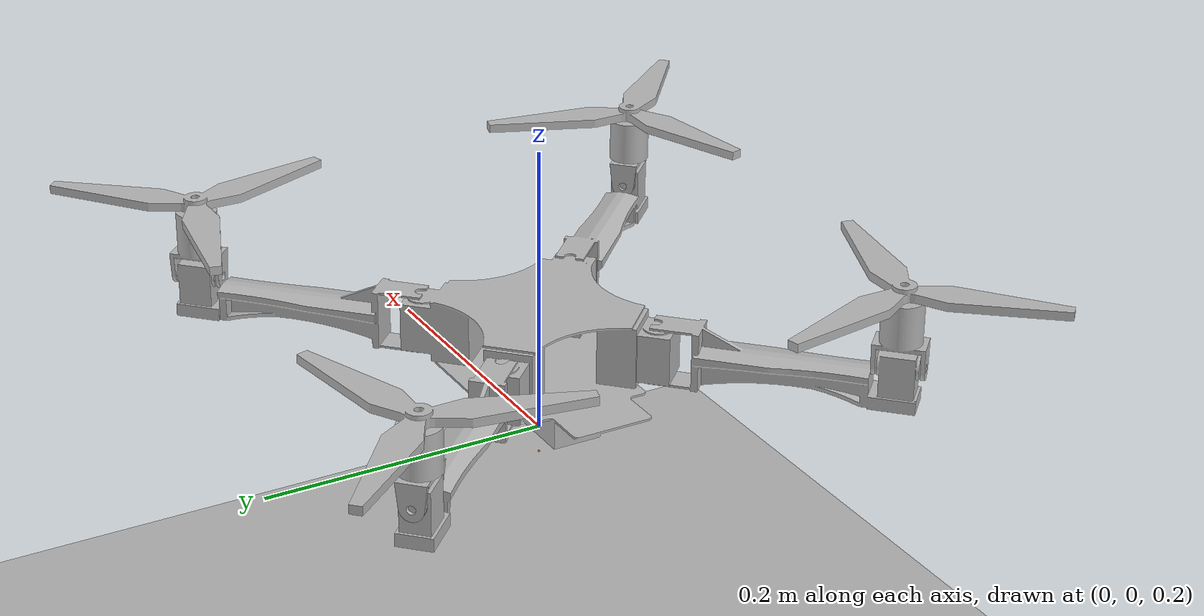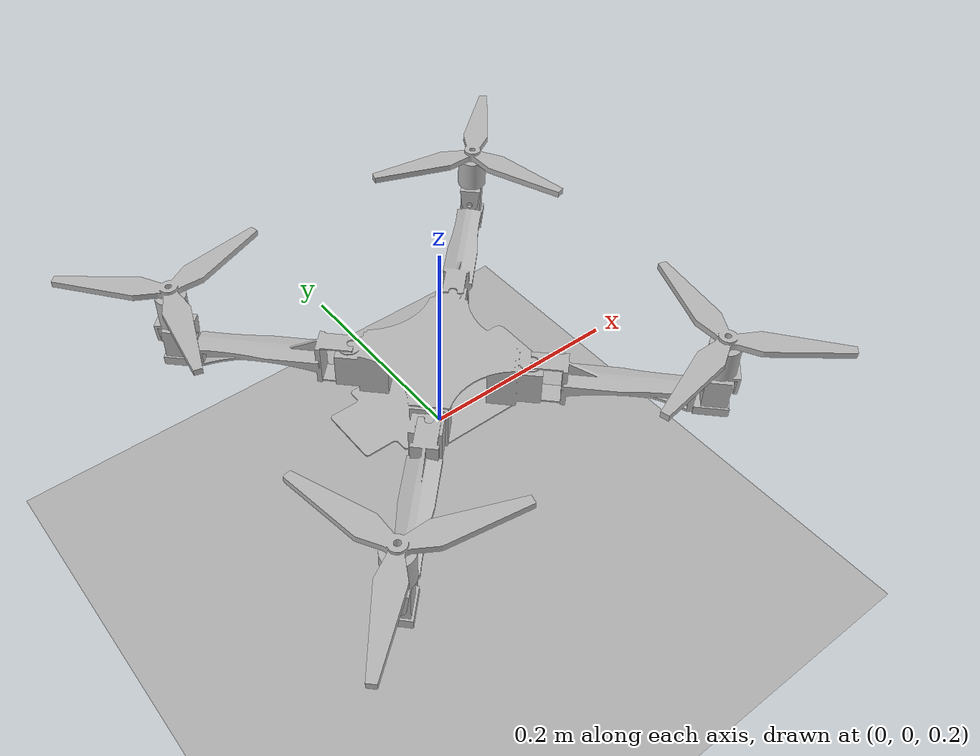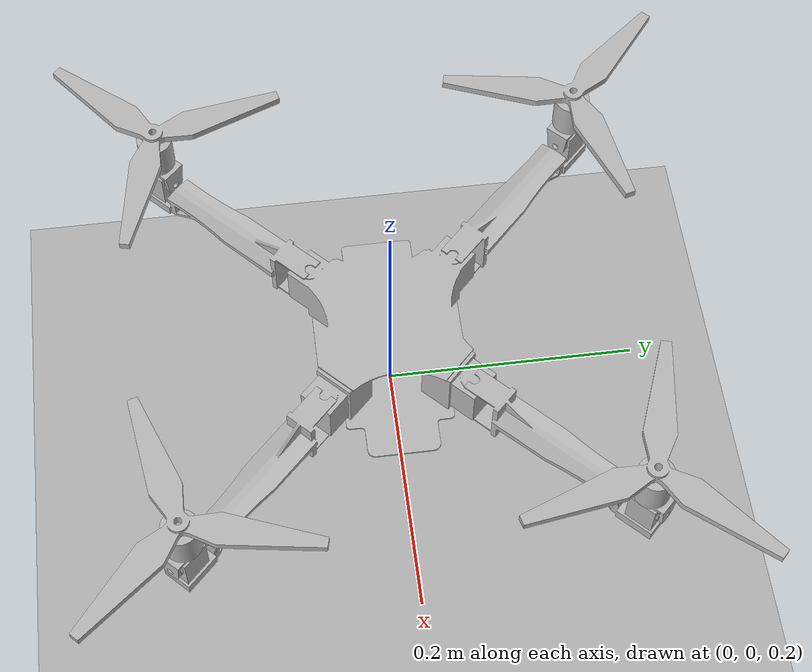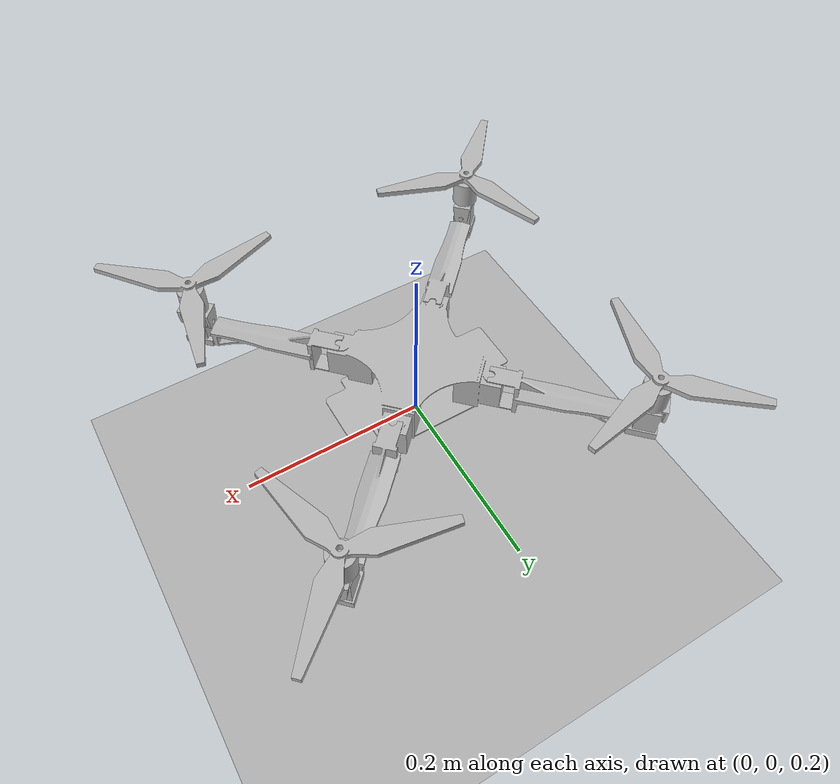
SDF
<?xml version='1.0' encoding='UTF-8'?>
<sdf version="1.7">
  <world name="Morphing_world">
      <physics type="ode">
      <max_step_size>0.001</max_step_size>
      <real_time_factor>1</real_time_factor>
      <real_time_update_rate>1000</real_time_update_rate>
      <ode>
        <solver>
          <type>quick</type>
          <iters>1500</iters>
          <sor>1.4</sor>
        </solver>
        <constraints>
          <cfm>0</cfm>
          <erp>1</erp>
          <contact_max_correcting_vel>0</contact_max_correcting_vel>
          <contact_surface_layer>0</contact_surface_layer>
        </constraints>
      </ode>
    </physics>

    <light type="directional" name="sun">
      <cast_shadows>true</cast_shadows>
      <pose>0 0 10 0 0 0</pose>
      <diffuse>0.8 0.8 0.8 1</diffuse>
      <specular>0.2 0.2 0.2 1</specular>
      <attenuation>
        <range>1000</range>
        <constant>0.9</constant>
        <linear>0.01</linear>
        <quadratic>0.001</quadratic>
      </attenuation>
      <direction>-0.5 0.1 -0.9</direction>
    </light>

    <model name="ground_plane">
      <static>true</static>
      <link name="link">
        <collision name="collision">
          <geometry>
            <plane>
              <normal>0 0 1</normal>
            </plane>
          </geometry>
          <surface>
            <friction>
              <ode>
                <mu>0.8</mu>
                <mu2>0.8</mu2>
              </ode>
            </friction>
          </surface>
        </collision>
        <visual name="visual">
          <geometry>
            <plane>
              <normal>0 0 1</normal>
              <size>100 100</size>
            </plane>
          </geometry>
          <material>
            <ambient>0.7 0.7 0.7 1</ambient>
            <diffuse>0.7 0.7 0.7 1</diffuse>
            <specular>0.7 0.7 0.7 1</specular>
          </material>
        </visual>
      </link>
    </model>

    <model name="Morphing_drone" canonical_link="body_link">
      <self_collide>true</self_collide>
      <pose>0 0 0.18 0 0 0</pose>
      <link name="body_link">
        <pose>0 0 0.033 0 0 0</pose>
        <collision name="body_collision">
          <pose>0 0 0.033 1.570796327 0 3.1415926535</pose>
          <geometry>
            <mesh>
              <uri>stl/body_link.stl</uri>
              <scale>0.001 0.001 0.001</scale>
            </mesh>
          </geometry>
          <surface>
            <contact/>
          </surface>
        </collision>
        <inertial>
          <pose>0.001705 0.000036 0.042196 0 0 0</pose>
          <mass>0.733</mass>
          <inertia>
            <ixx>0.001313892</ixx>
            <ixy>0</ixy>
            <ixz>-0.000018352 </ixz>
            <iyy>0.001655877</iyy>
            <iyz>0</iyz>
            <izz>0.002162122</izz>
          </inertia>
        </inertial>
        <visual name="body_visual">
          <pose>0 0 0.033 1.570796327 0 3.1415926535</pose>
          <geometry>
            <mesh>
              <uri>stl/body_link.stl</uri>
              <scale>0.001 0.001 0.001</scale>
            </mesh>
          </geometry>
        </visual>
      </link>
        <!-- COM에 추가할 가벼운 링크 -->
      <link name="com_force_link">
        <!-- 모델 전체 COM 위치 (body_link 기준 좌표계) -->
        <pose>0.002048 0.0000205 0.09248 0 0 0</pose>
        <inertial>
          <!-- 매우 작은 질량 -->
          <mass>1e-6</mass>
          <!-- 링크 고유 CoM은 링크 원점에 -->
          <pose>0 0 0 0 0 0</pose>
          <!-- 관성 모멘트도 작게 -->
          <inertia>
            <ixx>1e-9</ixx>
            <iyy>1e-9</iyy>
            <izz>1e-9</izz>
            <ixy>0</ixy>
            <ixz>0</ixz>
            <iyz>0</iyz>
          </inertia>
        </inertial>
      </link>
      <link name="Ycom_force_link">
        <!-- 모델 전체 COM 위치 (body_link 기준 좌표계) -->
        <pose>0.012548 0.0105205 0.09248 0 0 0</pose>
        <inertial>
          <!-- 매우 작은 질량 -->
          <mass>1e-6</mass>
          <!-- 링크 고유 CoM은 링크 원점에 -->
          <pose>0 0 0 0 0 0</pose>
          <!-- 관성 모멘트도 작게 -->
          <inertia>
            <ixx>1e-9</ixx>
            <iyy>1e-9</iyy>
            <izz>1e-9</izz>
            <ixy>0</ixy>
            <ixz>0</ixz>
            <iyz>0</iyz>
          </inertia>
        </inertial>
      </link>
      <link name="flare1_link">
        <pose relative_to="flare1_link_joint">0 0 0 0 0 0</pose>
        <collision name="flare1_collision">
          <pose relative_to="flare1_link_joint">0 0 0 1.570796327 0 1.570796327</pose>
          <geometry>
            <mesh>
              <uri>stl/flare_link.stl</uri>
              <scale>0.001 0.001 0.001</scale>
            </mesh>
          </geometry>
          <surface>
            <contact/>
          </surface>
        </collision>
        <inertial>
          <pose>0.106 0 0 0 0 0</pose>
          <mass>0.056</mass>
          <inertia>
            <ixx>0.000008703</ixx>
            <ixy>-0.000000006</ixy>
            <ixz>-0.000003319</ixz>
            <iyy>0.000187916</iyy>
            <iyz>0</iyz>
            <izz>0.000183866</izz>
          </inertia>
        </inertial>
        <visual name="flare1_visual">
          <pose relative_to="flare1_link_joint">0 0 0 1.570796327 0 1.570796327</pose>
          <geometry>
            <mesh>
              <uri>stl/flare_link.stl</uri>
              <scale>0.001 0.001 0.001</scale>
            </mesh>
          </geometry>
        </visual>
      </link>
      <link name="flare2_link">
        <pose relative_to="flare2_link_joint">0 0 0 0 0 0</pose>
        <collision name="flare2_collision">
          <pose relative_to="flare2_link_joint">0 0 0 1.570796327 0 1.570796327</pose>
          <geometry>
            <mesh>
              <uri>stl/flare_link.stl</uri>
              <scale>0.001 0.001 0.001</scale>
            </mesh>
          </geometry>
          <surface>
            <contact/>
          </surface>
        </collision>
        <inertial>
          <pose>0.106 0 0 0 0 0</pose>
          <mass>0.056</mass>
          <inertia>
            <ixx>0.000008703</ixx>
            <ixy>-0.000000006</ixy>
            <ixz>-0.000003319</ixz>
            <iyy>0.000187916</iyy>
            <iyz>0</iyz>
            <izz>0.000183866</izz>
          </inertia>
        </inertial>
        <visual name="flare2_visual">
          <pose relative_to="flare2_link_joint">0 0 0 1.570796327 0 1.570796327</pose>
          <geometry>
            <mesh>
              <uri>stl/flare_link.stl</uri>
              <scale>0.001 0.001 0.001</scale>
            </mesh>
          </geometry>
        </visual>
      </link>
      <link name="flare3_link">
        <pose relative_to="flare3_link_joint">0 0 0 0 0 0</pose>
        <collision name="flare3_collision">
          <pose relative_to="flare3_link_joint">0 0 0 1.570796327 0 1.570796327</pose>
          <geometry>
            <mesh>
              <uri>stl/flare_link.stl</uri>
              <scale>0.001 0.001 0.001</scale>
            </mesh>
          </geometry>
          <surface>
            <contact/>
          </surface>
        </collision>
        <inertial>
          <pose>0.106 0 0 0 0 0</pose>
          <mass>0.056</mass>
          <inertia>
            <ixx>0.000008703</ixx>
            <ixy>-0.000000006</ixy>
            <ixz>-0.000003319</ixz>
            <iyy>0.000187916</iyy>
            <iyz>0</iyz>
            <izz>0.000183866</izz>
          </inertia>
        </inertial>
        <visual name="flare3_visual">
          <pose relative_to="flare3_link_joint">0 0 0 1.570796327 0 1.570796327</pose>
          <geometry>
            <mesh>
              <uri>stl/flare_link.stl</uri>
              <scale>0.001 0.001 0.001</scale>
            </mesh>
          </geometry>
        </visual>
      </link>
      <link name="flare4_link">
        <pose relative_to="flare4_link_joint">0 0 0 0 0 0</pose>
        <collision name="flare4_collision">
          <pose relative_to="flare4_link_joint">0 0 0 1.570796327 0 1.570796327</pose>
          <geometry>
            <mesh>
              <uri>stl/flare_link.stl</uri>
              <scale>0.001 0.001 0.001</scale>
            </mesh>
          </geometry>
          <surface>
            <contact/>
          </surface>
        </collision>
        <inertial>
          <pose>0.106 0 0 0 0 0</pose>
          <mass>0.056</mass>
          <inertia>
            <ixx>0.000008703</ixx>
            <ixy>-0.000000006</ixy>
            <ixz>-0.000003319</ixz>
            <iyy>0.000187916</iyy>
            <iyz>0</iyz>
            <izz>0.000183866</izz>
          </inertia>
        </inertial>
        <visual name="flare4_visual">
          <pose relative_to="flare4_link_joint">0 0 0 1.570796327 0 1.570796327</pose>
          <geometry>
            <mesh>
              <uri>stl/flare_link.stl</uri>
              <scale>0.001 0.001 0.001</scale>
            </mesh>
          </geometry>
        </visual>
      </link>
      <link name="tilt1_link">
        <pose relative_to="tilt1_joint">0 0 0 0 0 0</pose>
        <collision name="tilt_1_collision">
          <pose relative_to="tilt1_joint">0 0 0 -1.570796327 0 0</pose>
          <geometry>
            <mesh>
              <uri> stl/tilt_link.stl</uri>
              <scale>0.001 0.001 0.001</scale>
            </mesh>
          </geometry>
          <surface>
            <contact/>
          </surface>
        </collision>
        <inertial>
          <pose>0 0 0.028 0 0 0 0</pose>
          <mass>0.065</mass>
          <inertia>
            <ixx>0.000009324</ixx>
            <ixy>0</ixy>
            <ixz>0</ixz>
            <iyy>0.000009685</iyy>
            <iyz>0</iyz>
            <izz>0.000007036</izz>
          </inertia>
        </inertial>
        <visual name="tilt_1">
          <pose relative_to="tilt1_joint">0 0 0 -1.570796327 0 0</pose>
          <geometry>
            <mesh>
              <uri> stl/tilt_link.stl</uri>
              <scale>0.001 0.001 0.001</scale>
            </mesh>
          </geometry>
        </visual>
      </link>
      <link name="tilt2_link">
        <pose relative_to="tilt2_joint">0 0 0 0 0 0</pose>
        <collision name="tilt_2_collision">
          <pose relative_to="tilt2_joint">0 0 0 -1.570796327 0 0</pose>
          <geometry>
            <mesh>
              <uri> stl/tilt_link.stl</uri>
              <scale>0.001 0.001 0.001</scale>
            </mesh>
          </geometry>
          <surface>
            <contact/>
          </surface>
        </collision>
        <inertial>
          <pose>0 0 0.028 0 0 0 0</pose>
          <mass>0.065</mass>
          <inertia>
            <ixx>0.000009324</ixx>
            <ixy>0</ixy>
            <ixz>0</ixz>
            <iyy>0.000009685</iyy>
            <iyz>0</iyz>
            <izz>0.000007036</izz>
          </inertia>
        </inertial>
        <visual name="tilt_2">
          <pose relative_to="tilt2_joint">0 0 0 -1.570796327 0 0</pose>
          <geometry>
            <mesh>
              <uri> stl/tilt_link.stl</uri>
              <scale>0.001 0.001 0.001</scale>
            </mesh>
          </geometry>
        </visual>
      </link>
      <link name="tilt3_link">
        <pose relative_to="tilt3_joint">0 0 0 0 0 0</pose>
        <collision name="tilt_3_collision">
          <pose relative_to="tilt3_joint">0 0 0 -1.570796327 0 0</pose>
          <geometry>
            <mesh>
              <uri> stl/tilt_link.stl</uri>
              <scale>0.001 0.001 0.001</scale>
            </mesh>
          </geometry>
          <surface>
            <contact/>
          </surface>
        </collision>
        <inertial>
          <pose>0 0 0.028 0 0 0 0</pose>
          <mass>0.065</mass>
          <inertia>
            <ixx>0.000009324</ixx>
            <ixy>0</ixy>
            <ixz>0</ixz>
            <iyy>0.000009685</iyy>
            <iyz>0</iyz>
            <izz>0.000007036</izz>
          </inertia>
        </inertial>
        <visual name="tilt_3">
          <pose relative_to="tilt3_joint">0 0 0 -1.570796327 0 0</pose>
          <geometry>
            <mesh>
              <uri> stl/tilt_link.stl</uri>
              <scale>0.001 0.001 0.001</scale>
            </mesh>
          </geometry>
        </visual>
      </link>
      <link name="tilt4_link">
        <pose relative_to="tilt4_joint">0 0 0 0 0 0</pose>
        <collision name="tilt_4_collision">
          <pose relative_to="tilt4_joint">0 0 0 -1.570796327 0 0</pose>
          <geometry>
            <mesh>
              <uri> stl/tilt_link.stl</uri>
              <scale>0.001 0.001 0.001</scale>
            </mesh>
          </geometry>
          <surface>
            <contact/>
          </surface>
        </collision>
        <inertial>
          <pose>0 0 0.028 0 0 0 0</pose>
          <mass>0.065</mass>
          <inertia>
            <ixx>0.000009324</ixx>
            <ixy>0</ixy>
            <ixz>0</ixz>
            <iyy>0.000009685</iyy>
            <iyz>0</iyz>
            <izz>0.000007036</izz>
          </inertia>
        </inertial>
        <visual name="tilt_4">
          <pose relative_to="tilt4_joint">0 0 0 -1.570796327 0 0</pose>
          <geometry>
            <mesh>
              <uri> stl/tilt_link.stl</uri>
              <scale>0.001 0.001 0.001</scale>
            </mesh>
          </geometry>
        </visual>
      </link>
      <link name="prop1_link">
        <pose relative_to="tilt1_joint">0 0 0.048 0 0 0</pose>
        <collision name="prop1_collision">
          <geometry>
            <mesh>
              <uri> stl/prop_link.stl</uri>
              <scale>0.001 0.001 0.001</scale>
            </mesh>
          </geometry>
          <surface>
            <contact/>
          </surface>
        </collision>
        <inertial>
          <pose>0 0 0 0 0 0</pose>
          <mass>0.018</mass>
          <inertia>
            <ixx>0.0000282327</ixx>
            <ixy>0</ixy>
            <ixz>0</ixz>
            <iyy>0.0000282327</iyy>
            <iyz>0</iyz>
            <izz>0.0000560071</izz>
          </inertia>
        </inertial>
        <visual name="prop1_visual">
          <geometry>
            <mesh>
              <uri> stl/prop_link.stl</uri>
              <scale>0.001 0.001 0.001</scale>
            </mesh>
          </geometry>
        </visual>
      </link>
      <link name="prop2_link">
        <pose relative_to="tilt2_joint">0 0 0.048 0 0 0</pose>
        <collision name="prop2_collision">
          <geometry>
            <mesh>
              <uri> stl/prop_link.stl</uri>
              <scale>0.001 0.001 0.001</scale>
            </mesh>
          </geometry>
          <surface>
            <contact/>
          </surface>
        </collision>
        <inertial>
          <pose>0 0 0 0 0 0</pose>
          <mass>0.018</mass>
          <inertia>
            <ixx>0.0000282327</ixx>
            <ixy>0</ixy>
            <ixz>0</ixz>
            <iyy>0.0000282327</iyy>
            <iyz>0</iyz>
            <izz>0.0000560071</izz>
          </inertia>
        </inertial>
        <visual name="prop2_visual">
          <geometry>
            <mesh>
              <uri> stl/prop_link.stl</uri>
              <scale>0.001 0.001 0.001</scale>
            </mesh>
          </geometry>
        </visual>
      </link>
      <link name="prop3_link">
        <pose relative_to="tilt3_joint">0 0 0.048 0 0 0</pose>
        <collision name="prop3_collision">
          <geometry>
            <mesh>
              <uri> stl/prop_link.stl</uri>
              <scale>0.001 0.001 0.001</scale>
            </mesh>
          </geometry>
          <surface>
            <contact/>
          </surface>
        </collision>
        <inertial>
          <pose>0 0 0 0 0 0</pose>
          <mass>0.018</mass>
          <inertia>
            <ixx>0.0000282327</ixx>
            <ixy>0</ixy>
            <ixz>0</ixz>
            <iyy>0.0000282327</iyy>
            <iyz>0</iyz>
            <izz>0.0000560071</izz>
          </inertia>
        </inertial>
        <visual name="prop3_visual">
          <geometry>
            <mesh>
              <uri> stl/prop_link.stl</uri>
              <scale>0.001 0.001 0.001</scale>
            </mesh>
          </geometry>
        </visual>
      </link>
      <link name="prop4_link">
        <pose relative_to="tilt4_joint">0 0 0.048 0 0 0</pose>
        <collision name="prop4_collision">
          <geometry>
            <mesh>
              <uri> stl/prop_link.stl</uri>
              <scale>0.001 0.001 0.001</scale>
            </mesh>
          </geometry>
          <surface>
            <contact/>
          </surface>
        </collision>
        <inertial>
          <pose>0 0 0 0 0 0</pose>
          <mass>0.018</mass>
          <inertia>
            <ixx>0.0000282327</ixx>
            <ixy>0</ixy>
            <ixz>0</ixz>
            <iyy>0.0000282327</iyy>
            <iyz>0</iyz>
            <izz>0.0000560071</izz>
          </inertia>
        </inertial>
        <visual name="prop4_visual">
          <geometry>
            <mesh>
              <uri> stl/prop_link.stl</uri>
              <scale>0.001 0.001 0.001</scale>
            </mesh>
          </geometry>
        </visual>
      </link>

      <link name="imu_link">
        <pose>0 0 0.001 0 0 0</pose>
        <visual name="visual">
          <geometry>
            <box>
              <size>0.001 0.001 0.001</size>
            </box>
          </geometry>
          <material>
            <ambient>1 0.5 0 1</ambient>
            <diffuse>1 0.5 0 1</diffuse>
            <specular>0.5 0.5 0.5 1</specular>
            <emissive>0 0 0 0</emissive>
          </material>
        </visual>
        <inertial>
          <mass>0.00001</mass>
          <pose>0 0 0 0 0 0</pose>
          <inertia>
            <ixx>0.00000001</ixx>
            <ixy>0.0</ixy>
            <ixz>0.0</ixz>
            <iyy>0.00000001</iyy>
            <iyz>0.0</iyz>
            <izz>0.00000001</izz>
          </inertia>
        </inertial>
        <sensor name="imu_sensor" type="imu">
          <pose>0 0 0 0 0 0</pose>
          <always_on>true</always_on>
          <update_rate>100</update_rate>
          <imu>
            <topic>imu</topic>
            <update_rate>100</update_rate>
            <orientation>
              <noise>
                <type>gaussian</type>
                <mean>0.0</mean>
                <stddev>0.01</stddev>
              </noise>
            </orientation>
            <angular_velocity>
              <noise>
                <type>gaussian</type>
                <mean>0.0</mean>
                <stddev>0.1</stddev>
              </noise>
            </angular_velocity>
            <linear_acceleration>
              <noise>
                <type>gaussian</type>
                <mean>0.0</mean>
                <stddev>0.1</stddev>
              </noise>
            </linear_acceleration>
          </imu>
          <plugin name="imu_plugin" filename="libgazebo_ros_imu_sensor.so">
            <ros>
              <namespace>/</namespace>
              <argument>~</argument>
            </ros>
            <bodyName>imu_link</bodyName>
            <topicName>imu</topicName>
            <updateRate>100.0</updateRate>
            <gaussianNoise>0.0</gaussianNoise>
            <xyzOffset>0 0 0</xyzOffset>
            <rpyOffset>0 0 0</rpyOffset>
            <frameName>imu_link</frameName>
            <initial_orientation_as_reference>true</initial_orientation_as_reference>
          </plugin>
        </sensor>
      </link>
      <joint name="B2GPS" type="fixed">
        <parent>body_link</parent>
        <child>gps_link</child>
        <pose>0 0 0 0 0 0</pose>
      </joint>
      <joint name="B2IMU" type="fixed">
        <parent>body_link</parent>
        <child>imu_link</child>
        <pose>0 0 0 0 0 0</pose>
      </joint>
      <!--힘, 토크 작용점-->
      <joint name="com_force_joint" type="fixed">
        <parent>body_link</parent>
        <child>com_force_link</child>
        <!-- 이 조인트는 body_link 원점에 고정 -->
        <pose>0 0 0 0 0 0</pose>
      </joint>
      <joint name="Ycom_force_joint" type="fixed">
        <parent>body_link</parent>
        <child>Ycom_force_link</child>
        <!-- 이 조인트는 body_link 원점에 고정 -->
        <pose>0 0 0 0 0 0</pose>
      </joint>

      <joint name="flare1_link_joint" type="revolute">
        <parent>body_link</parent>
        <child>flare1_link</child>
        <pose relative_to="body_link">0.059776 0.057276 0.0555 0 0 0.7853981634</pose>
        <axis>
          <limit>
            <lower>-0.7853981634</lower>
            <upper>0.7853981634</upper>
            <effort>4.9</effort>
            <velocity>0.00000</velocity>
          </limit>
          <xyz>0.00000 0.00000 1.00000</xyz>
        </axis>
      </joint>
      <joint name="flare2_link_joint" type="revolute">
        <parent>body_link</parent>
        <child>flare2_link</child>
        <pose relative_to="body_link">0.059776 -0.057276 0.0555 0 0 -0.7853981634</pose>
        <axis>
          <limit>
            <lower>-0.7853981634</lower>
            <upper>0.7853981634</upper>
            <effort>4.9</effort>
            <velocity>0.00000</velocity>
          </limit>
          <xyz>0.00000 0.00000 1.00000</xyz>
        </axis>
      </joint>
      <joint name="flare3_link_joint" type="revolute">
        <parent>body_link</parent>
        <child>flare3_link</child>
        <pose relative_to="body_link">-0.054776 -0.057276 0.0555 0 0 -2.35619449</pose>
        <axis>
          <limit>
            <lower>-0.7853981634</lower>
            <upper>0.7853981634</upper>
            <effort>4.9</effort>
            <velocity>0.00000</velocity>
          </limit>
          <xyz>0.00000 0.00000 1.00000</xyz>
        </axis>
      </joint>
      <joint name="flare4_link_joint" type="revolute">
        <parent>body_link</parent>
        <child>flare4_link</child>
        <pose relative_to="body_link">-0.054776 0.057276 0.0555 0 0 2.35619449</pose>
        <axis>
          <limit>
            <lower>-0.7853981634</lower>
            <upper>0.7853981634</upper>
            <effort>4.9</effort>
            <velocity>0.00000</velocity>
          </limit>
          <xyz>0.00000 0.00000 1.00000</xyz>
        </axis>
      </joint>
      <joint name="tilt1_joint" type="revolute">
        <pose relative_to="flare1_link_joint">0.1595 0 0.0125 0 0 0</pose>
        <parent>flare1_link</parent>
        <child>tilt1_link</child>
        <axis>
          <limit>
            <lower>-1.570796327</lower>
            <upper>1.570796327</upper>
            <effort>0.98</effort>
            <velocity>0.00000</velocity>

          </limit>
          <xyz>1 0 0</xyz>
        </axis>
      </joint>
      <joint name="tilt2_joint" type="revolute">
        <pose relative_to="flare2_link_joint">0.1595 0 0.0125 0 0 0</pose>
        <parent>flare2_link</parent>
        <child>tilt2_link</child>
        <axis>
          <limit>
            <lower>-1.570796327</lower>
            <upper>1.570796327</upper>
            <effort>0.98</effort>
            <velocity>0.00000</velocity>
          </limit>
          <xyz>1 0 0</xyz>
        </axis>
      </joint>
      <joint name="tilt3_joint" type="revolute">
        <pose relative_to="flare3_link_joint">0.1595 0 0.0125 0 0 0</pose>
        <parent>flare3_link</parent>
        <child>tilt3_link</child>
        <axis>
          <limit>
            <lower>-1.570796327</lower>
            <upper>1.570796327</upper>
            <effort>0.98</effort>
            <velocity>0.00000</velocity>
          </limit>
          <xyz>1 0 0</xyz>
        </axis>
      </joint>
      <joint name="tilt4_joint" type="revolute">
        <pose relative_to="flare4_link_joint">0.1595 0 0.0125 0 0 0</pose>
        <parent>flare4_link</parent>
        <child>tilt4_link</child>
        <axis>
          <limit>
            <lower>-1.570796327</lower>
            <upper>1.570796327</upper>
            <effort>0.98</effort>
            <velocity>0.00000</velocity>
          </limit>
          <xyz>1 0 0</xyz>
        </axis>
      </joint>
      <joint name="prop1_joint" type="revolute">
        <pose relative_to="tilt1_joint">0 0 0.048 0 0 0</pose>
        <parent>tilt1_link</parent>
        <child>prop1_link</child>
        <axis>
          <xyz>0 0 1</xyz>
        </axis>
      </joint>
      <joint name="prop2_joint" type="revolute">
        <pose relative_to="tilt2_joint">0 0 0.048 0 0 0</pose>
        <parent>tilt2_link</parent>
        <child>prop2_link</child>
        <axis>
          <xyz>0 0 1</xyz>
        </axis>
      </joint>
      <joint name="prop3_joint" type="revolute">
        <pose relative_to="tilt3_joint">0 0 0.048 0 0 0</pose>
        <parent>tilt3_link</parent>
        <child>prop3_link</child>
        <axis>
          <xyz>0 0 1</xyz>
        </axis>
      </joint>
      <joint name="prop4_joint" type="revolute">
        <pose relative_to="tilt4_joint">0 0 0.048 0 0 0</pose>
        <parent>tilt4_link</parent>
        <child>prop4_link</child>
        <axis>
          <xyz>0 0 1</xyz>
        </axis>
      </joint>

      <!-- main 모터 -->
      <plugin name="motor1" filename="libgazebo_motor_model_ros.so">
        <robotNamespace>my_drone</robotNamespace>
        <jointName>prop1_joint</jointName>
      </plugin>
      <plugin name="motor2" filename="libgazebo_motor_model_ros.so">
        <robotNamespace>my_drone</robotNamespace>
        <jointName>prop2_joint</jointName>
      </plugin>
      <plugin name="motor3" filename="libgazebo_motor_model_ros.so">
        <robotNamespace>my_drone</robotNamespace>
        <jointName>prop3_joint</jointName>
      </plugin>
      <plugin name="motor4" filename="libgazebo_motor_model_ros.so">
        <robotNamespace>my_drone</robotNamespace>
        <jointName>prop4_joint</jointName>
      </plugin>

      <!-- flare 모터 -->
      <plugin name="motor_flare1" filename="libgazebo_motor_model_ros.so">
        <robotNamespace>my_drone</robotNamespace>
        <jointName>flare1_link_joint</jointName>
      </plugin>
      <plugin name="motor_flare2" filename="libgazebo_motor_model_ros.so">
        <robotNamespace>my_drone</robotNamespace>
        <jointName>flare2_link_joint</jointName>
      </plugin>
      <plugin name="motor_flare3" filename="libgazebo_motor_model_ros.so">
        <robotNamespace>my_drone</robotNamespace>
        <jointName>flare3_link_joint</jointName>
      </plugin>
      <plugin name="motor_flare4" filename="libgazebo_motor_model_ros.so">
        <robotNamespace>my_drone</robotNamespace>
        <jointName>flare4_link_joint</jointName>
      </plugin>

      <!-- tilt 모터 -->
      <plugin name="motor_tilt1" filename="libgazebo_motor_model_ros.so">
        <robotNamespace>my_drone</robotNamespace>
        <jointName>tilt1_joint</jointName>
      </plugin>
      <plugin name="motor_tilt2" filename="libgazebo_motor_model_ros.so">
        <robotNamespace>my_drone</robotNamespace>
        <jointName>tilt2_joint</jointName>
      </plugin>
      <plugin name="motor_tilt3" filename="libgazebo_motor_model_ros.so">
        <robotNamespace>my_drone</robotNamespace>
        <jointName>tilt3_joint</jointName>
      </plugin>
      <plugin name="motor_tilt4" filename="libgazebo_motor_model_ros.so">
        <robotNamespace>my_drone</robotNamespace>
        <jointName>tilt4_joint</jointName>
      </plugin>

      <plugin name="joint_state_publisher"
              filename="libgazebo_ros_joint_state_publisher.so">
        <robotNamespace>my_drone</robotNamespace>
        <!-- publish_rate 가 아니라 update_rate -->
        <update_rate>50</update_rate>

        <!-- jointName 이 아니라 joint_name -->
        <joint_name>prop1_joint</joint_name>
        <joint_name>prop2_joint</joint_name>
        <joint_name>prop3_joint</joint_name>
        <joint_name>prop4_joint</joint_name>

        <!-- flare -->
        <joint_name>flare1_link_joint</joint_name>
        <joint_name>flare2_link_joint</joint_name>
        <joint_name>flare3_link_joint</joint_name>
        <joint_name>flare4_link_joint</joint_name>

        <!-- tilt -->
        <joint_name>tilt1_joint</joint_name>
        <joint_name>tilt2_joint</joint_name>
        <joint_name>tilt3_joint</joint_name>
        <joint_name>tilt4_joint</joint_name>
      </plugin>

      <plugin name="pose_publisher" filename="libgazebo_ros_p3d.so">
        <ros>
          <namespace>/my_drone</namespace>
          <remapping>~/pose:=pose</remapping>
        </ros>
        <alwaysOn>true</alwaysOn>
        <updateRate>100.0</updateRate>
        <body_name>body_link</body_name>
        <gaussianNoise>0.0</gaussianNoise>
        <frameId>world</frameId>
      </plugin>

    </model>
  </world>
</sdf>
